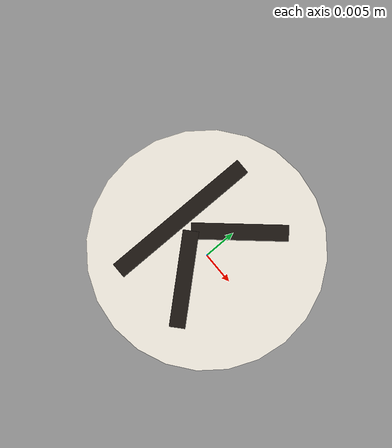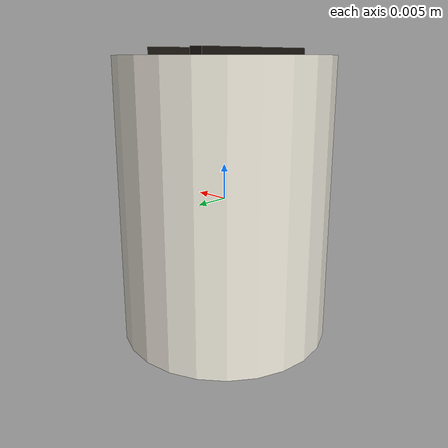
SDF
<?xml version="1.0" ?>
<sdf version="1.9">
  <model name="king_white">
    <static>false</static>
    <pose>0 0 0 0 0 0</pose>

    <link name="link">

      <inertial>
        <mass>0.05</mass>
        <inertia>
          <ixx>0.00002</ixx>
          <iyy>0.00002</iyy>
          <izz>0.00001</izz>
        </inertia>
      </inertial>

      <collision name="collision">
        <geometry>
          <cylinder>
            <radius>0.015</radius>
            <length>0.04</length>
          </cylinder>
        </geometry>
        <surface>
          <friction>
            <ode>
              <mu>1.8</mu>
              <mu2>1.8</mu2>
            </ode>
          </friction>
        </surface>
      </collision>

      <visual name="visual">
        <geometry>
          <cylinder>
            <radius>0.015</radius>
            <length>0.04</length>
          </cylinder>
        </geometry>
        <material>
          <ambient>0.92 0.90 0.85 1</ambient>
          <diffuse>0.92 0.90 0.85 1</diffuse>
        </material>
      </visual>

      <!-- "K" imprint: vertical stem + two diagonals (upper and lower arms). -->
      <visual name="letter_stem">
        <pose>-0.005 0 0.0205 0 0 0</pose>
        <geometry><box><size>0.002 0.020 0.001</size></box></geometry>
        <material>
          <ambient>0.10 0.08 0.06 1</ambient>
          <diffuse>0.10 0.08 0.06 1</diffuse>
        </material>
      </visual>
      <visual name="letter_upper_arm">
        <pose>0.001 0.0045 0.0205 0 0 0.844</pose>
        <geometry><box><size>0.01204 0.002 0.001</size></box></geometry>
        <material>
          <ambient>0.10 0.08 0.06 1</ambient>
          <diffuse>0.10 0.08 0.06 1</diffuse>
        </material>
      </visual>
      <visual name="letter_lower_arm">
        <pose>0.001 -0.0045 0.0205 0 0 -0.844</pose>
        <geometry><box><size>0.01204 0.002 0.001</size></box></geometry>
        <material>
          <ambient>0.10 0.08 0.06 1</ambient>
          <diffuse>0.10 0.08 0.06 1</diffuse>
        </material>
      </visual>

    </link>
  </model>
</sdf>
